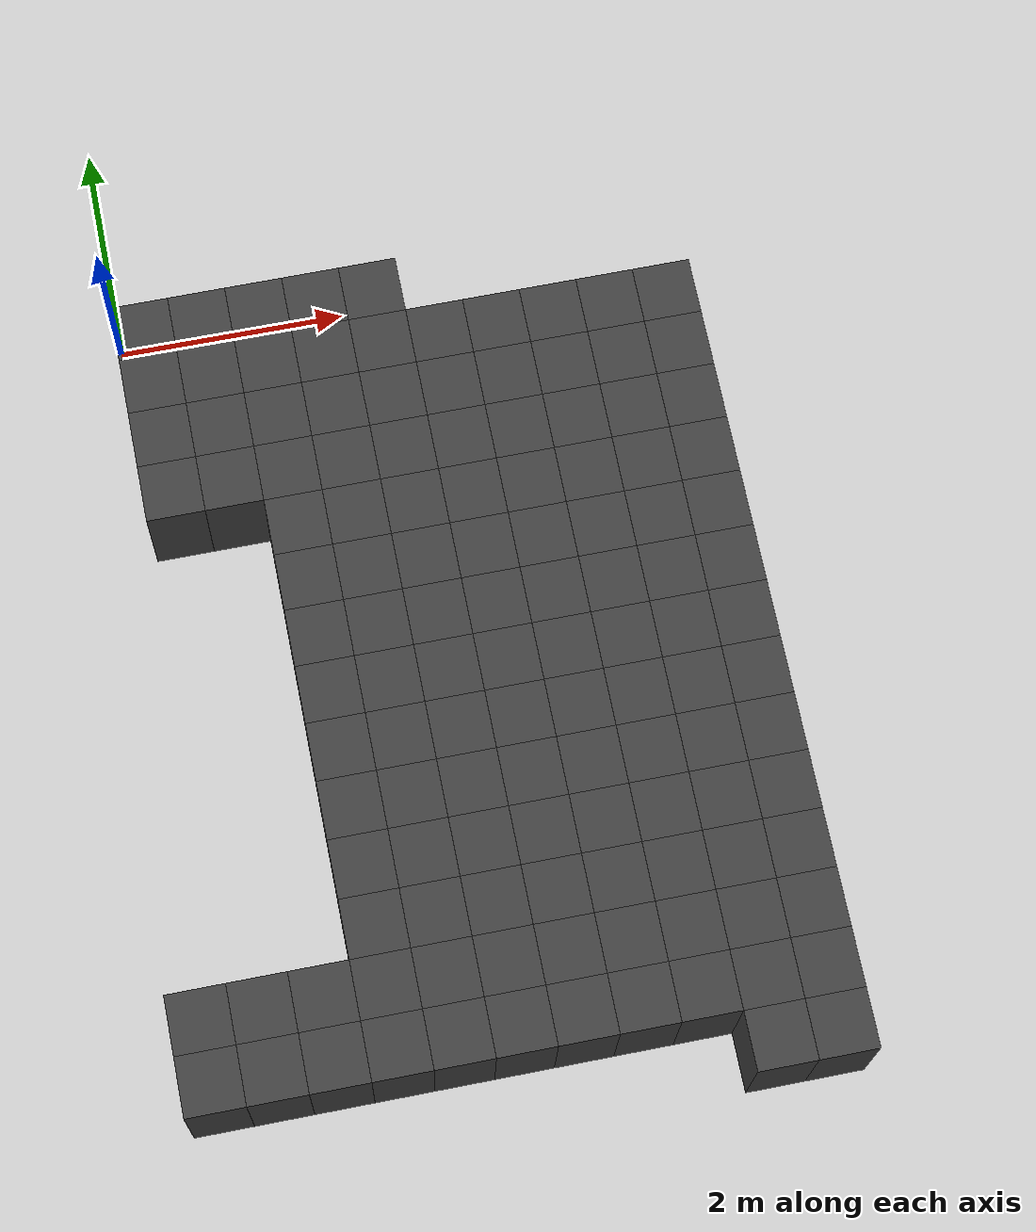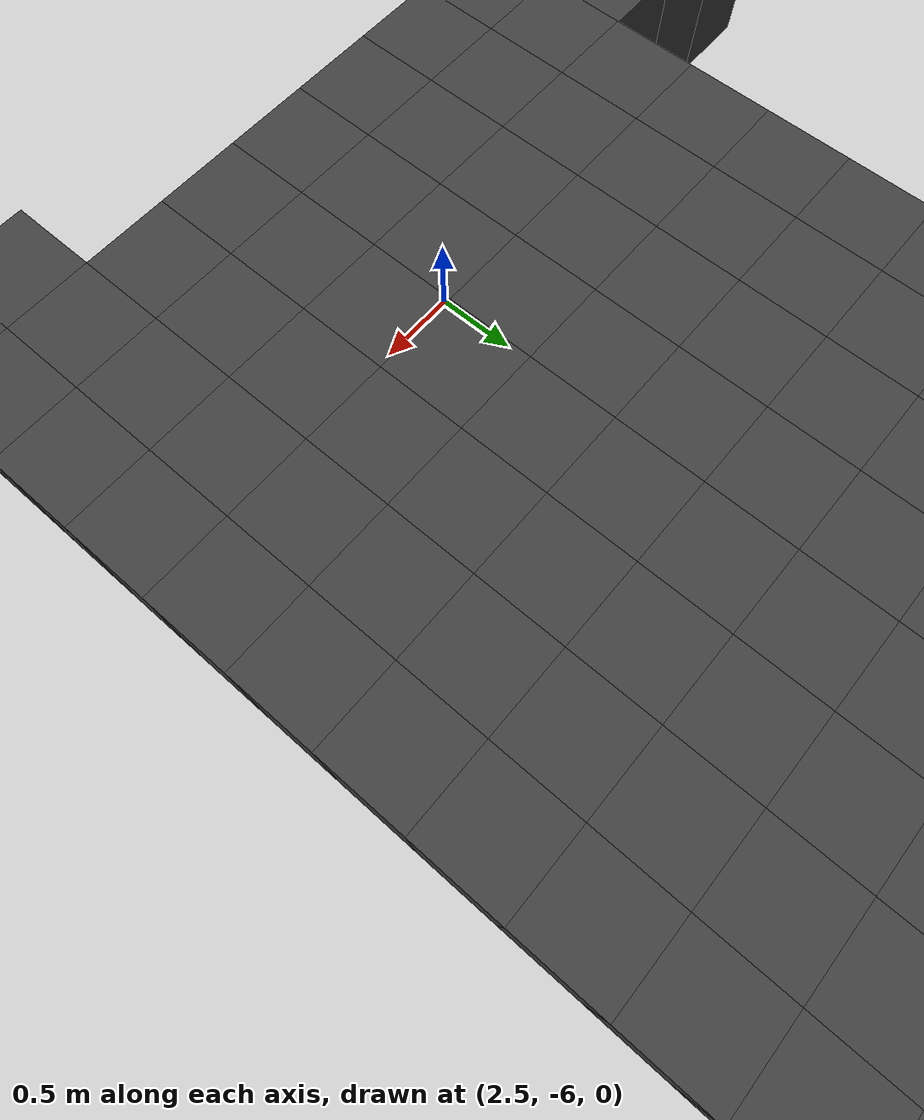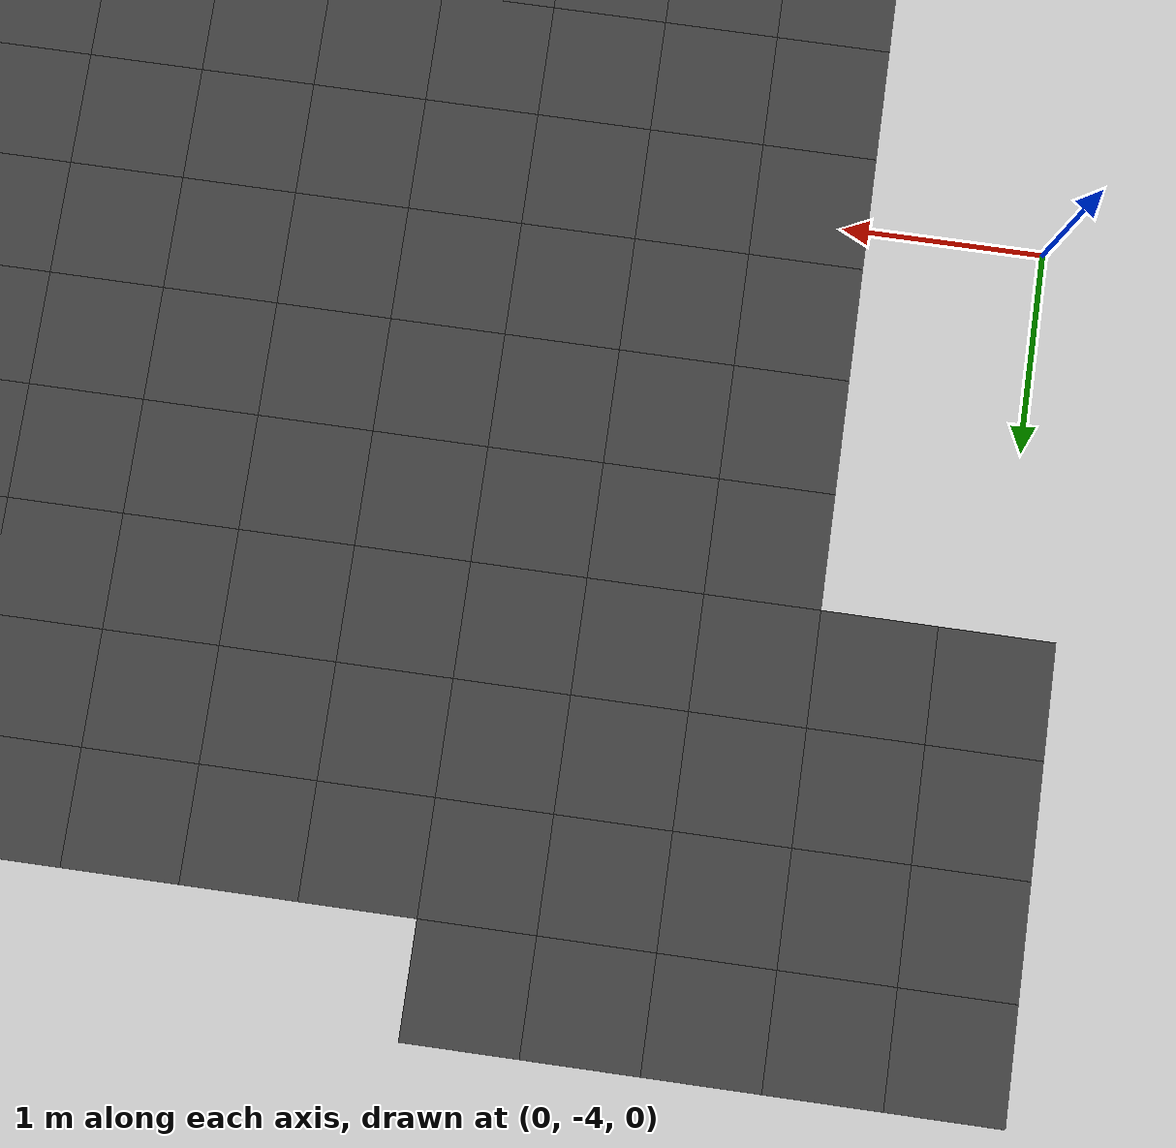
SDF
<sdf version="1.7">
 <world name="map_14074">
  <model name="ground_plane">
   <static>true</static>
   <link name="link">
    <collision name="collision">
     <geometry><plane><normal>0 0 1</normal><size>200 200</size></plane></geometry>
    </collision>
    <visual name="visual">
     <geometry><plane><normal>0 0 1</normal><size>200 200</size></plane></geometry>
     <material><ambient>0.8 0.8 0.8 1</ambient><diffuse>0.8 0.8 0.8 1</diffuse></material>
    </visual>
   </link>
  </model>
  <model name="maze_environment">
   <static>true</static>
   <link name="wall_1005">
    <pose>0.250 -0.250 0.500 0 0 0</pose>
    <collision name="col"><geometry><box><size>0.5 0.5 1.0</size></box></geometry></collision>
    <visual name="vis">
     <geometry><box><size>0.5 0.5 1.0</size></box></geometry>
     <material><ambient>0.15 0.15 0.15 1</ambient><diffuse>0.25 0.25 0.25 1</diffuse></material>
    </visual>
   </link>
   <link name="wall_1006">
    <pose>0.750 -0.250 0.500 0 0 0</pose>
    <collision name="col"><geometry><box><size>0.5 0.5 1.0</size></box></geometry></collision>
    <visual name="vis">
     <geometry><box><size>0.5 0.5 1.0</size></box></geometry>
     <material><ambient>0.15 0.15 0.15 1</ambient><diffuse>0.25 0.25 0.25 1</diffuse></material>
    </visual>
   </link>
   <link name="wall_1007">
    <pose>1.250 -0.250 0.500 0 0 0</pose>
    <collision name="col"><geometry><box><size>0.5 0.5 1.0</size></box></geometry></collision>
    <visual name="vis">
     <geometry><box><size>0.5 0.5 1.0</size></box></geometry>
     <material><ambient>0.15 0.15 0.15 1</ambient><diffuse>0.25 0.25 0.25 1</diffuse></material>
    </visual>
   </link>
   <link name="wall_1008">
    <pose>1.750 -0.250 0.500 0 0 0</pose>
    <collision name="col"><geometry><box><size>0.5 0.5 1.0</size></box></geometry></collision>
    <visual name="vis">
     <geometry><box><size>0.5 0.5 1.0</size></box></geometry>
     <material><ambient>0.15 0.15 0.15 1</ambient><diffuse>0.25 0.25 0.25 1</diffuse></material>
    </visual>
   </link>
   <link name="wall_1009">
    <pose>2.250 -0.250 0.500 0 0 0</pose>
    <collision name="col"><geometry><box><size>0.5 0.5 1.0</size></box></geometry></collision>
    <visual name="vis">
     <geometry><box><size>0.5 0.5 1.0</size></box></geometry>
     <material><ambient>0.15 0.15 0.15 1</ambient><diffuse>0.25 0.25 0.25 1</diffuse></material>
    </visual>
   </link>
   <link name="wall_1043">
    <pose>0.250 -0.750 0.500 0 0 0</pose>
    <collision name="col"><geometry><box><size>0.5 0.5 1.0</size></box></geometry></collision>
    <visual name="vis">
     <geometry><box><size>0.5 0.5 1.0</size></box></geometry>
     <material><ambient>0.15 0.15 0.15 1</ambient><diffuse>0.25 0.25 0.25 1</diffuse></material>
    </visual>
   </link>
   <link name="wall_1044">
    <pose>0.750 -0.750 0.500 0 0 0</pose>
    <collision name="col"><geometry><box><size>0.5 0.5 1.0</size></box></geometry></collision>
    <visual name="vis">
     <geometry><box><size>0.5 0.5 1.0</size></box></geometry>
     <material><ambient>0.15 0.15 0.15 1</ambient><diffuse>0.25 0.25 0.25 1</diffuse></material>
    </visual>
   </link>
   <link name="wall_1045">
    <pose>1.250 -0.750 0.500 0 0 0</pose>
    <collision name="col"><geometry><box><size>0.5 0.5 1.0</size></box></geometry></collision>
    <visual name="vis">
     <geometry><box><size>0.5 0.5 1.0</size></box></geometry>
     <material><ambient>0.15 0.15 0.15 1</ambient><diffuse>0.25 0.25 0.25 1</diffuse></material>
    </visual>
   </link>
   <link name="wall_1046">
    <pose>1.750 -0.750 0.500 0 0 0</pose>
    <collision name="col"><geometry><box><size>0.5 0.5 1.0</size></box></geometry></collision>
    <visual name="vis">
     <geometry><box><size>0.5 0.5 1.0</size></box></geometry>
     <material><ambient>0.15 0.15 0.15 1</ambient><diffuse>0.25 0.25 0.25 1</diffuse></material>
    </visual>
   </link>
   <link name="wall_1047">
    <pose>2.250 -0.750 0.500 0 0 0</pose>
    <collision name="col"><geometry><box><size>0.5 0.5 1.0</size></box></geometry></collision>
    <visual name="vis">
     <geometry><box><size>0.5 0.5 1.0</size></box></geometry>
     <material><ambient>0.15 0.15 0.15 1</ambient><diffuse>0.25 0.25 0.25 1</diffuse></material>
    </visual>
   </link>
   <link name="wall_1048">
    <pose>2.750 -0.750 0.500 0 0 0</pose>
    <collision name="col"><geometry><box><size>0.5 0.5 1.0</size></box></geometry></collision>
    <visual name="vis">
     <geometry><box><size>0.5 0.5 1.0</size></box></geometry>
     <material><ambient>0.15 0.15 0.15 1</ambient><diffuse>0.25 0.25 0.25 1</diffuse></material>
    </visual>
   </link>
   <link name="wall_1049">
    <pose>3.250 -0.750 0.500 0 0 0</pose>
    <collision name="col"><geometry><box><size>0.5 0.5 1.0</size></box></geometry></collision>
    <visual name="vis">
     <geometry><box><size>0.5 0.5 1.0</size></box></geometry>
     <material><ambient>0.15 0.15 0.15 1</ambient><diffuse>0.25 0.25 0.25 1</diffuse></material>
    </visual>
   </link>
   <link name="wall_1050">
    <pose>3.750 -0.750 0.500 0 0 0</pose>
    <collision name="col"><geometry><box><size>0.5 0.5 1.0</size></box></geometry></collision>
    <visual name="vis">
     <geometry><box><size>0.5 0.5 1.0</size></box></geometry>
     <material><ambient>0.15 0.15 0.15 1</ambient><diffuse>0.25 0.25 0.25 1</diffuse></material>
    </visual>
   </link>
   <link name="wall_1051">
    <pose>4.250 -0.750 0.500 0 0 0</pose>
    <collision name="col"><geometry><box><size>0.5 0.5 1.0</size></box></geometry></collision>
    <visual name="vis">
     <geometry><box><size>0.5 0.5 1.0</size></box></geometry>
     <material><ambient>0.15 0.15 0.15 1</ambient><diffuse>0.25 0.25 0.25 1</diffuse></material>
    </visual>
   </link>
   <link name="wall_1052">
    <pose>4.750 -0.750 0.500 0 0 0</pose>
    <collision name="col"><geometry><box><size>0.5 0.5 1.0</size></box></geometry></collision>
    <visual name="vis">
     <geometry><box><size>0.5 0.5 1.0</size></box></geometry>
     <material><ambient>0.15 0.15 0.15 1</ambient><diffuse>0.25 0.25 0.25 1</diffuse></material>
    </visual>
   </link>
   <link name="wall_1082">
    <pose>0.250 -1.250 0.500 0 0 0</pose>
    <collision name="col"><geometry><box><size>0.5 0.5 1.0</size></box></geometry></collision>
    <visual name="vis">
     <geometry><box><size>0.5 0.5 1.0</size></box></geometry>
     <material><ambient>0.15 0.15 0.15 1</ambient><diffuse>0.25 0.25 0.25 1</diffuse></material>
    </visual>
   </link>
   <link name="wall_1083">
    <pose>0.750 -1.250 0.500 0 0 0</pose>
    <collision name="col"><geometry><box><size>0.5 0.5 1.0</size></box></geometry></collision>
    <visual name="vis">
     <geometry><box><size>0.5 0.5 1.0</size></box></geometry>
     <material><ambient>0.15 0.15 0.15 1</ambient><diffuse>0.25 0.25 0.25 1</diffuse></material>
    </visual>
   </link>
   <link name="wall_1084">
    <pose>1.250 -1.250 0.500 0 0 0</pose>
    <collision name="col"><geometry><box><size>0.5 0.5 1.0</size></box></geometry></collision>
    <visual name="vis">
     <geometry><box><size>0.5 0.5 1.0</size></box></geometry>
     <material><ambient>0.15 0.15 0.15 1</ambient><diffuse>0.25 0.25 0.25 1</diffuse></material>
    </visual>
   </link>
   <link name="wall_1085">
    <pose>1.750 -1.250 0.500 0 0 0</pose>
    <collision name="col"><geometry><box><size>0.5 0.5 1.0</size></box></geometry></collision>
    <visual name="vis">
     <geometry><box><size>0.5 0.5 1.0</size></box></geometry>
     <material><ambient>0.15 0.15 0.15 1</ambient><diffuse>0.25 0.25 0.25 1</diffuse></material>
    </visual>
   </link>
   <link name="wall_1086">
    <pose>2.250 -1.250 0.500 0 0 0</pose>
    <collision name="col"><geometry><box><size>0.5 0.5 1.0</size></box></geometry></collision>
    <visual name="vis">
     <geometry><box><size>0.5 0.5 1.0</size></box></geometry>
     <material><ambient>0.15 0.15 0.15 1</ambient><diffuse>0.25 0.25 0.25 1</diffuse></material>
    </visual>
   </link>
   <link name="wall_1087">
    <pose>2.750 -1.250 0.500 0 0 0</pose>
    <collision name="col"><geometry><box><size>0.5 0.5 1.0</size></box></geometry></collision>
    <visual name="vis">
     <geometry><box><size>0.5 0.5 1.0</size></box></geometry>
     <material><ambient>0.15 0.15 0.15 1</ambient><diffuse>0.25 0.25 0.25 1</diffuse></material>
    </visual>
   </link>
   <link name="wall_1088">
    <pose>3.250 -1.250 0.500 0 0 0</pose>
    <collision name="col"><geometry><box><size>0.5 0.5 1.0</size></box></geometry></collision>
    <visual name="vis">
     <geometry><box><size>0.5 0.5 1.0</size></box></geometry>
     <material><ambient>0.15 0.15 0.15 1</ambient><diffuse>0.25 0.25 0.25 1</diffuse></material>
    </visual>
   </link>
   <link name="wall_1089">
    <pose>3.750 -1.250 0.500 0 0 0</pose>
    <collision name="col"><geometry><box><size>0.5 0.5 1.0</size></box></geometry></collision>
    <visual name="vis">
     <geometry><box><size>0.5 0.5 1.0</size></box></geometry>
     <material><ambient>0.15 0.15 0.15 1</ambient><diffuse>0.25 0.25 0.25 1</diffuse></material>
    </visual>
   </link>
   <link name="wall_1090">
    <pose>4.250 -1.250 0.500 0 0 0</pose>
    <collision name="col"><geometry><box><size>0.5 0.5 1.0</size></box></geometry></collision>
    <visual name="vis">
     <geometry><box><size>0.5 0.5 1.0</size></box></geometry>
     <material><ambient>0.15 0.15 0.15 1</ambient><diffuse>0.25 0.25 0.25 1</diffuse></material>
    </visual>
   </link>
   <link name="wall_1091">
    <pose>4.750 -1.250 0.500 0 0 0</pose>
    <collision name="col"><geometry><box><size>0.5 0.5 1.0</size></box></geometry></collision>
    <visual name="vis">
     <geometry><box><size>0.5 0.5 1.0</size></box></geometry>
     <material><ambient>0.15 0.15 0.15 1</ambient><diffuse>0.25 0.25 0.25 1</diffuse></material>
    </visual>
   </link>
   <link name="wall_1122">
    <pose>0.250 -1.750 0.500 0 0 0</pose>
    <collision name="col"><geometry><box><size>0.5 0.5 1.0</size></box></geometry></collision>
    <visual name="vis">
     <geometry><box><size>0.5 0.5 1.0</size></box></geometry>
     <material><ambient>0.15 0.15 0.15 1</ambient><diffuse>0.25 0.25 0.25 1</diffuse></material>
    </visual>
   </link>
   <link name="wall_1123">
    <pose>0.750 -1.750 0.500 0 0 0</pose>
    <collision name="col"><geometry><box><size>0.5 0.5 1.0</size></box></geometry></collision>
    <visual name="vis">
     <geometry><box><size>0.5 0.5 1.0</size></box></geometry>
     <material><ambient>0.15 0.15 0.15 1</ambient><diffuse>0.25 0.25 0.25 1</diffuse></material>
    </visual>
   </link>
   <link name="wall_1124">
    <pose>1.250 -1.750 0.500 0 0 0</pose>
    <collision name="col"><geometry><box><size>0.5 0.5 1.0</size></box></geometry></collision>
    <visual name="vis">
     <geometry><box><size>0.5 0.5 1.0</size></box></geometry>
     <material><ambient>0.15 0.15 0.15 1</ambient><diffuse>0.25 0.25 0.25 1</diffuse></material>
    </visual>
   </link>
   <link name="wall_1125">
    <pose>1.750 -1.750 0.500 0 0 0</pose>
    <collision name="col"><geometry><box><size>0.5 0.5 1.0</size></box></geometry></collision>
    <visual name="vis">
     <geometry><box><size>0.5 0.5 1.0</size></box></geometry>
     <material><ambient>0.15 0.15 0.15 1</ambient><diffuse>0.25 0.25 0.25 1</diffuse></material>
    </visual>
   </link>
   <link name="wall_1126">
    <pose>2.250 -1.750 0.500 0 0 0</pose>
    <collision name="col"><geometry><box><size>0.5 0.5 1.0</size></box></geometry></collision>
    <visual name="vis">
     <geometry><box><size>0.5 0.5 1.0</size></box></geometry>
     <material><ambient>0.15 0.15 0.15 1</ambient><diffuse>0.25 0.25 0.25 1</diffuse></material>
    </visual>
   </link>
   <link name="wall_1127">
    <pose>2.750 -1.750 0.500 0 0 0</pose>
    <collision name="col"><geometry><box><size>0.5 0.5 1.0</size></box></geometry></collision>
    <visual name="vis">
     <geometry><box><size>0.5 0.5 1.0</size></box></geometry>
     <material><ambient>0.15 0.15 0.15 1</ambient><diffuse>0.25 0.25 0.25 1</diffuse></material>
    </visual>
   </link>
   <link name="wall_1128">
    <pose>3.250 -1.750 0.500 0 0 0</pose>
    <collision name="col"><geometry><box><size>0.5 0.5 1.0</size></box></geometry></collision>
    <visual name="vis">
     <geometry><box><size>0.5 0.5 1.0</size></box></geometry>
     <material><ambient>0.15 0.15 0.15 1</ambient><diffuse>0.25 0.25 0.25 1</diffuse></material>
    </visual>
   </link>
   <link name="wall_1129">
    <pose>3.750 -1.750 0.500 0 0 0</pose>
    <collision name="col"><geometry><box><size>0.5 0.5 1.0</size></box></geometry></collision>
    <visual name="vis">
     <geometry><box><size>0.5 0.5 1.0</size></box></geometry>
     <material><ambient>0.15 0.15 0.15 1</ambient><diffuse>0.25 0.25 0.25 1</diffuse></material>
    </visual>
   </link>
   <link name="wall_1130">
    <pose>4.250 -1.750 0.500 0 0 0</pose>
    <collision name="col"><geometry><box><size>0.5 0.5 1.0</size></box></geometry></collision>
    <visual name="vis">
     <geometry><box><size>0.5 0.5 1.0</size></box></geometry>
     <material><ambient>0.15 0.15 0.15 1</ambient><diffuse>0.25 0.25 0.25 1</diffuse></material>
    </visual>
   </link>
   <link name="wall_1131">
    <pose>4.750 -1.750 0.500 0 0 0</pose>
    <collision name="col"><geometry><box><size>0.5 0.5 1.0</size></box></geometry></collision>
    <visual name="vis">
     <geometry><box><size>0.5 0.5 1.0</size></box></geometry>
     <material><ambient>0.15 0.15 0.15 1</ambient><diffuse>0.25 0.25 0.25 1</diffuse></material>
    </visual>
   </link>
   <link name="wall_1164">
    <pose>1.250 -2.250 0.500 0 0 0</pose>
    <collision name="col"><geometry><box><size>0.5 0.5 1.0</size></box></geometry></collision>
    <visual name="vis">
     <geometry><box><size>0.5 0.5 1.0</size></box></geometry>
     <material><ambient>0.15 0.15 0.15 1</ambient><diffuse>0.25 0.25 0.25 1</diffuse></material>
    </visual>
   </link>
   <link name="wall_1165">
    <pose>1.750 -2.250 0.500 0 0 0</pose>
    <collision name="col"><geometry><box><size>0.5 0.5 1.0</size></box></geometry></collision>
    <visual name="vis">
     <geometry><box><size>0.5 0.5 1.0</size></box></geometry>
     <material><ambient>0.15 0.15 0.15 1</ambient><diffuse>0.25 0.25 0.25 1</diffuse></material>
    </visual>
   </link>
   <link name="wall_1166">
    <pose>2.250 -2.250 0.500 0 0 0</pose>
    <collision name="col"><geometry><box><size>0.5 0.5 1.0</size></box></geometry></collision>
    <visual name="vis">
     <geometry><box><size>0.5 0.5 1.0</size></box></geometry>
     <material><ambient>0.15 0.15 0.15 1</ambient><diffuse>0.25 0.25 0.25 1</diffuse></material>
    </visual>
   </link>
   <link name="wall_1167">
    <pose>2.750 -2.250 0.500 0 0 0</pose>
    <collision name="col"><geometry><box><size>0.5 0.5 1.0</size></box></geometry></collision>
    <visual name="vis">
     <geometry><box><size>0.5 0.5 1.0</size></box></geometry>
     <material><ambient>0.15 0.15 0.15 1</ambient><diffuse>0.25 0.25 0.25 1</diffuse></material>
    </visual>
   </link>
   <link name="wall_1168">
    <pose>3.250 -2.250 0.500 0 0 0</pose>
    <collision name="col"><geometry><box><size>0.5 0.5 1.0</size></box></geometry></collision>
    <visual name="vis">
     <geometry><box><size>0.5 0.5 1.0</size></box></geometry>
     <material><ambient>0.15 0.15 0.15 1</ambient><diffuse>0.25 0.25 0.25 1</diffuse></material>
    </visual>
   </link>
   <link name="wall_1169">
    <pose>3.750 -2.250 0.500 0 0 0</pose>
    <collision name="col"><geometry><box><size>0.5 0.5 1.0</size></box></geometry></collision>
    <visual name="vis">
     <geometry><box><size>0.5 0.5 1.0</size></box></geometry>
     <material><ambient>0.15 0.15 0.15 1</ambient><diffuse>0.25 0.25 0.25 1</diffuse></material>
    </visual>
   </link>
   <link name="wall_1170">
    <pose>4.250 -2.250 0.500 0 0 0</pose>
    <collision name="col"><geometry><box><size>0.5 0.5 1.0</size></box></geometry></collision>
    <visual name="vis">
     <geometry><box><size>0.5 0.5 1.0</size></box></geometry>
     <material><ambient>0.15 0.15 0.15 1</ambient><diffuse>0.25 0.25 0.25 1</diffuse></material>
    </visual>
   </link>
   <link name="wall_1171">
    <pose>4.750 -2.250 0.500 0 0 0</pose>
    <collision name="col"><geometry><box><size>0.5 0.5 1.0</size></box></geometry></collision>
    <visual name="vis">
     <geometry><box><size>0.5 0.5 1.0</size></box></geometry>
     <material><ambient>0.15 0.15 0.15 1</ambient><diffuse>0.25 0.25 0.25 1</diffuse></material>
    </visual>
   </link>
   <link name="wall_1200">
    <pose>1.250 -2.750 0.500 0 0 0</pose>
    <collision name="col"><geometry><box><size>0.5 0.5 1.0</size></box></geometry></collision>
    <visual name="vis">
     <geometry><box><size>0.5 0.5 1.0</size></box></geometry>
     <material><ambient>0.15 0.15 0.15 1</ambient><diffuse>0.25 0.25 0.25 1</diffuse></material>
    </visual>
   </link>
   <link name="wall_1201">
    <pose>1.750 -2.750 0.500 0 0 0</pose>
    <collision name="col"><geometry><box><size>0.5 0.5 1.0</size></box></geometry></collision>
    <visual name="vis">
     <geometry><box><size>0.5 0.5 1.0</size></box></geometry>
     <material><ambient>0.15 0.15 0.15 1</ambient><diffuse>0.25 0.25 0.25 1</diffuse></material>
    </visual>
   </link>
   <link name="wall_1202">
    <pose>2.250 -2.750 0.500 0 0 0</pose>
    <collision name="col"><geometry><box><size>0.5 0.5 1.0</size></box></geometry></collision>
    <visual name="vis">
     <geometry><box><size>0.5 0.5 1.0</size></box></geometry>
     <material><ambient>0.15 0.15 0.15 1</ambient><diffuse>0.25 0.25 0.25 1</diffuse></material>
    </visual>
   </link>
   <link name="wall_1203">
    <pose>2.750 -2.750 0.500 0 0 0</pose>
    <collision name="col"><geometry><box><size>0.5 0.5 1.0</size></box></geometry></collision>
    <visual name="vis">
     <geometry><box><size>0.5 0.5 1.0</size></box></geometry>
     <material><ambient>0.15 0.15 0.15 1</ambient><diffuse>0.25 0.25 0.25 1</diffuse></material>
    </visual>
   </link>
   <link name="wall_1204">
    <pose>3.250 -2.750 0.500 0 0 0</pose>
    <collision name="col"><geometry><box><size>0.5 0.5 1.0</size></box></geometry></collision>
    <visual name="vis">
     <geometry><box><size>0.5 0.5 1.0</size></box></geometry>
     <material><ambient>0.15 0.15 0.15 1</ambient><diffuse>0.25 0.25 0.25 1</diffuse></material>
    </visual>
   </link>
   <link name="wall_1205">
    <pose>3.750 -2.750 0.500 0 0 0</pose>
    <collision name="col"><geometry><box><size>0.5 0.5 1.0</size></box></geometry></collision>
    <visual name="vis">
     <geometry><box><size>0.5 0.5 1.0</size></box></geometry>
     <material><ambient>0.15 0.15 0.15 1</ambient><diffuse>0.25 0.25 0.25 1</diffuse></material>
    </visual>
   </link>
   <link name="wall_1206">
    <pose>4.250 -2.750 0.500 0 0 0</pose>
    <collision name="col"><geometry><box><size>0.5 0.5 1.0</size></box></geometry></collision>
    <visual name="vis">
     <geometry><box><size>0.5 0.5 1.0</size></box></geometry>
     <material><ambient>0.15 0.15 0.15 1</ambient><diffuse>0.25 0.25 0.25 1</diffuse></material>
    </visual>
   </link>
   <link name="wall_1207">
    <pose>4.750 -2.750 0.500 0 0 0</pose>
    <collision name="col"><geometry><box><size>0.5 0.5 1.0</size></box></geometry></collision>
    <visual name="vis">
     <geometry><box><size>0.5 0.5 1.0</size></box></geometry>
     <material><ambient>0.15 0.15 0.15 1</ambient><diffuse>0.25 0.25 0.25 1</diffuse></material>
    </visual>
   </link>
   <link name="wall_1230">
    <pose>1.250 -3.250 0.500 0 0 0</pose>
    <collision name="col"><geometry><box><size>0.5 0.5 1.0</size></box></geometry></collision>
    <visual name="vis">
     <geometry><box><size>0.5 0.5 1.0</size></box></geometry>
     <material><ambient>0.15 0.15 0.15 1</ambient><diffuse>0.25 0.25 0.25 1</diffuse></material>
    </visual>
   </link>
   <link name="wall_1231">
    <pose>1.750 -3.250 0.500 0 0 0</pose>
    <collision name="col"><geometry><box><size>0.5 0.5 1.0</size></box></geometry></collision>
    <visual name="vis">
     <geometry><box><size>0.5 0.5 1.0</size></box></geometry>
     <material><ambient>0.15 0.15 0.15 1</ambient><diffuse>0.25 0.25 0.25 1</diffuse></material>
    </visual>
   </link>
   <link name="wall_1232">
    <pose>2.250 -3.250 0.500 0 0 0</pose>
    <collision name="col"><geometry><box><size>0.5 0.5 1.0</size></box></geometry></collision>
    <visual name="vis">
     <geometry><box><size>0.5 0.5 1.0</size></box></geometry>
     <material><ambient>0.15 0.15 0.15 1</ambient><diffuse>0.25 0.25 0.25 1</diffuse></material>
    </visual>
   </link>
   <link name="wall_1233">
    <pose>2.750 -3.250 0.500 0 0 0</pose>
    <collision name="col"><geometry><box><size>0.5 0.5 1.0</size></box></geometry></collision>
    <visual name="vis">
     <geometry><box><size>0.5 0.5 1.0</size></box></geometry>
     <material><ambient>0.15 0.15 0.15 1</ambient><diffuse>0.25 0.25 0.25 1</diffuse></material>
    </visual>
   </link>
   <link name="wall_1234">
    <pose>3.250 -3.250 0.500 0 0 0</pose>
    <collision name="col"><geometry><box><size>0.5 0.5 1.0</size></box></geometry></collision>
    <visual name="vis">
     <geometry><box><size>0.5 0.5 1.0</size></box></geometry>
     <material><ambient>0.15 0.15 0.15 1</ambient><diffuse>0.25 0.25 0.25 1</diffuse></material>
    </visual>
   </link>
   <link name="wall_1235">
    <pose>3.750 -3.250 0.500 0 0 0</pose>
    <collision name="col"><geometry><box><size>0.5 0.5 1.0</size></box></geometry></collision>
    <visual name="vis">
     <geometry><box><size>0.5 0.5 1.0</size></box></geometry>
     <material><ambient>0.15 0.15 0.15 1</ambient><diffuse>0.25 0.25 0.25 1</diffuse></material>
    </visual>
   </link>
   <link name="wall_1236">
    <pose>4.250 -3.250 0.500 0 0 0</pose>
    <collision name="col"><geometry><box><size>0.5 0.5 1.0</size></box></geometry></collision>
    <visual name="vis">
     <geometry><box><size>0.5 0.5 1.0</size></box></geometry>
     <material><ambient>0.15 0.15 0.15 1</ambient><diffuse>0.25 0.25 0.25 1</diffuse></material>
    </visual>
   </link>
   <link name="wall_1237">
    <pose>4.750 -3.250 0.500 0 0 0</pose>
    <collision name="col"><geometry><box><size>0.5 0.5 1.0</size></box></geometry></collision>
    <visual name="vis">
     <geometry><box><size>0.5 0.5 1.0</size></box></geometry>
     <material><ambient>0.15 0.15 0.15 1</ambient><diffuse>0.25 0.25 0.25 1</diffuse></material>
    </visual>
   </link>
   <link name="wall_1260">
    <pose>1.250 -3.750 0.500 0 0 0</pose>
    <collision name="col"><geometry><box><size>0.5 0.5 1.0</size></box></geometry></collision>
    <visual name="vis">
     <geometry><box><size>0.5 0.5 1.0</size></box></geometry>
     <material><ambient>0.15 0.15 0.15 1</ambient><diffuse>0.25 0.25 0.25 1</diffuse></material>
    </visual>
   </link>
   <link name="wall_1261">
    <pose>1.750 -3.750 0.500 0 0 0</pose>
    <collision name="col"><geometry><box><size>0.5 0.5 1.0</size></box></geometry></collision>
    <visual name="vis">
     <geometry><box><size>0.5 0.5 1.0</size></box></geometry>
     <material><ambient>0.15 0.15 0.15 1</ambient><diffuse>0.25 0.25 0.25 1</diffuse></material>
    </visual>
   </link>
   <link name="wall_1262">
    <pose>2.250 -3.750 0.500 0 0 0</pose>
    <collision name="col"><geometry><box><size>0.5 0.5 1.0</size></box></geometry></collision>
    <visual name="vis">
     <geometry><box><size>0.5 0.5 1.0</size></box></geometry>
     <material><ambient>0.15 0.15 0.15 1</ambient><diffuse>0.25 0.25 0.25 1</diffuse></material>
    </visual>
   </link>
   <link name="wall_1263">
    <pose>2.750 -3.750 0.500 0 0 0</pose>
    <collision name="col"><geometry><box><size>0.5 0.5 1.0</size></box></geometry></collision>
    <visual name="vis">
     <geometry><box><size>0.5 0.5 1.0</size></box></geometry>
     <material><ambient>0.15 0.15 0.15 1</ambient><diffuse>0.25 0.25 0.25 1</diffuse></material>
    </visual>
   </link>
   <link name="wall_1264">
    <pose>3.250 -3.750 0.500 0 0 0</pose>
    <collision name="col"><geometry><box><size>0.5 0.5 1.0</size></box></geometry></collision>
    <visual name="vis">
     <geometry><box><size>0.5 0.5 1.0</size></box></geometry>
     <material><ambient>0.15 0.15 0.15 1</ambient><diffuse>0.25 0.25 0.25 1</diffuse></material>
    </visual>
   </link>
   <link name="wall_1265">
    <pose>3.750 -3.750 0.500 0 0 0</pose>
    <collision name="col"><geometry><box><size>0.5 0.5 1.0</size></box></geometry></collision>
    <visual name="vis">
     <geometry><box><size>0.5 0.5 1.0</size></box></geometry>
     <material><ambient>0.15 0.15 0.15 1</ambient><diffuse>0.25 0.25 0.25 1</diffuse></material>
    </visual>
   </link>
   <link name="wall_1266">
    <pose>4.250 -3.750 0.500 0 0 0</pose>
    <collision name="col"><geometry><box><size>0.5 0.5 1.0</size></box></geometry></collision>
    <visual name="vis">
     <geometry><box><size>0.5 0.5 1.0</size></box></geometry>
     <material><ambient>0.15 0.15 0.15 1</ambient><diffuse>0.25 0.25 0.25 1</diffuse></material>
    </visual>
   </link>
   <link name="wall_1267">
    <pose>4.750 -3.750 0.500 0 0 0</pose>
    <collision name="col"><geometry><box><size>0.5 0.5 1.0</size></box></geometry></collision>
    <visual name="vis">
     <geometry><box><size>0.5 0.5 1.0</size></box></geometry>
     <material><ambient>0.15 0.15 0.15 1</ambient><diffuse>0.25 0.25 0.25 1</diffuse></material>
    </visual>
   </link>
   <link name="wall_1289">
    <pose>1.250 -4.250 0.500 0 0 0</pose>
    <collision name="col"><geometry><box><size>0.5 0.5 1.0</size></box></geometry></collision>
    <visual name="vis">
     <geometry><box><size>0.5 0.5 1.0</size></box></geometry>
     <material><ambient>0.15 0.15 0.15 1</ambient><diffuse>0.25 0.25 0.25 1</diffuse></material>
    </visual>
   </link>
   <link name="wall_1290">
    <pose>1.750 -4.250 0.500 0 0 0</pose>
    <collision name="col"><geometry><box><size>0.5 0.5 1.0</size></box></geometry></collision>
    <visual name="vis">
     <geometry><box><size>0.5 0.5 1.0</size></box></geometry>
     <material><ambient>0.15 0.15 0.15 1</ambient><diffuse>0.25 0.25 0.25 1</diffuse></material>
    </visual>
   </link>
   <link name="wall_1291">
    <pose>2.250 -4.250 0.500 0 0 0</pose>
    <collision name="col"><geometry><box><size>0.5 0.5 1.0</size></box></geometry></collision>
    <visual name="vis">
     <geometry><box><size>0.5 0.5 1.0</size></box></geometry>
     <material><ambient>0.15 0.15 0.15 1</ambient><diffuse>0.25 0.25 0.25 1</diffuse></material>
    </visual>
   </link>
   <link name="wall_1292">
    <pose>2.750 -4.250 0.500 0 0 0</pose>
    <collision name="col"><geometry><box><size>0.5 0.5 1.0</size></box></geometry></collision>
    <visual name="vis">
     <geometry><box><size>0.5 0.5 1.0</size></box></geometry>
     <material><ambient>0.15 0.15 0.15 1</ambient><diffuse>0.25 0.25 0.25 1</diffuse></material>
    </visual>
   </link>
   <link name="wall_1293">
    <pose>3.250 -4.250 0.500 0 0 0</pose>
    <collision name="col"><geometry><box><size>0.5 0.5 1.0</size></box></geometry></collision>
    <visual name="vis">
     <geometry><box><size>0.5 0.5 1.0</size></box></geometry>
     <material><ambient>0.15 0.15 0.15 1</ambient><diffuse>0.25 0.25 0.25 1</diffuse></material>
    </visual>
   </link>
   <link name="wall_1294">
    <pose>3.750 -4.250 0.500 0 0 0</pose>
    <collision name="col"><geometry><box><size>0.5 0.5 1.0</size></box></geometry></collision>
    <visual name="vis">
     <geometry><box><size>0.5 0.5 1.0</size></box></geometry>
     <material><ambient>0.15 0.15 0.15 1</ambient><diffuse>0.25 0.25 0.25 1</diffuse></material>
    </visual>
   </link>
   <link name="wall_1295">
    <pose>4.250 -4.250 0.500 0 0 0</pose>
    <collision name="col"><geometry><box><size>0.5 0.5 1.0</size></box></geometry></collision>
    <visual name="vis">
     <geometry><box><size>0.5 0.5 1.0</size></box></geometry>
     <material><ambient>0.15 0.15 0.15 1</ambient><diffuse>0.25 0.25 0.25 1</diffuse></material>
    </visual>
   </link>
   <link name="wall_1296">
    <pose>4.750 -4.250 0.500 0 0 0</pose>
    <collision name="col"><geometry><box><size>0.5 0.5 1.0</size></box></geometry></collision>
    <visual name="vis">
     <geometry><box><size>0.5 0.5 1.0</size></box></geometry>
     <material><ambient>0.15 0.15 0.15 1</ambient><diffuse>0.25 0.25 0.25 1</diffuse></material>
    </visual>
   </link>
   <link name="wall_1317">
    <pose>1.250 -4.750 0.500 0 0 0</pose>
    <collision name="col"><geometry><box><size>0.5 0.5 1.0</size></box></geometry></collision>
    <visual name="vis">
     <geometry><box><size>0.5 0.5 1.0</size></box></geometry>
     <material><ambient>0.15 0.15 0.15 1</ambient><diffuse>0.25 0.25 0.25 1</diffuse></material>
    </visual>
   </link>
   <link name="wall_1318">
    <pose>1.750 -4.750 0.500 0 0 0</pose>
    <collision name="col"><geometry><box><size>0.5 0.5 1.0</size></box></geometry></collision>
    <visual name="vis">
     <geometry><box><size>0.5 0.5 1.0</size></box></geometry>
     <material><ambient>0.15 0.15 0.15 1</ambient><diffuse>0.25 0.25 0.25 1</diffuse></material>
    </visual>
   </link>
   <link name="wall_1319">
    <pose>2.250 -4.750 0.500 0 0 0</pose>
    <collision name="col"><geometry><box><size>0.5 0.5 1.0</size></box></geometry></collision>
    <visual name="vis">
     <geometry><box><size>0.5 0.5 1.0</size></box></geometry>
     <material><ambient>0.15 0.15 0.15 1</ambient><diffuse>0.25 0.25 0.25 1</diffuse></material>
    </visual>
   </link>
   <link name="wall_1320">
    <pose>2.750 -4.750 0.500 0 0 0</pose>
    <collision name="col"><geometry><box><size>0.5 0.5 1.0</size></box></geometry></collision>
    <visual name="vis">
     <geometry><box><size>0.5 0.5 1.0</size></box></geometry>
     <material><ambient>0.15 0.15 0.15 1</ambient><diffuse>0.25 0.25 0.25 1</diffuse></material>
    </visual>
   </link>
   <link name="wall_1321">
    <pose>3.250 -4.750 0.500 0 0 0</pose>
    <collision name="col"><geometry><box><size>0.5 0.5 1.0</size></box></geometry></collision>
    <visual name="vis">
     <geometry><box><size>0.5 0.5 1.0</size></box></geometry>
     <material><ambient>0.15 0.15 0.15 1</ambient><diffuse>0.25 0.25 0.25 1</diffuse></material>
    </visual>
   </link>
   <link name="wall_1322">
    <pose>3.750 -4.750 0.500 0 0 0</pose>
    <collision name="col"><geometry><box><size>0.5 0.5 1.0</size></box></geometry></collision>
    <visual name="vis">
     <geometry><box><size>0.5 0.5 1.0</size></box></geometry>
     <material><ambient>0.15 0.15 0.15 1</ambient><diffuse>0.25 0.25 0.25 1</diffuse></material>
    </visual>
   </link>
   <link name="wall_1323">
    <pose>4.250 -4.750 0.500 0 0 0</pose>
    <collision name="col"><geometry><box><size>0.5 0.5 1.0</size></box></geometry></collision>
    <visual name="vis">
     <geometry><box><size>0.5 0.5 1.0</size></box></geometry>
     <material><ambient>0.15 0.15 0.15 1</ambient><diffuse>0.25 0.25 0.25 1</diffuse></material>
    </visual>
   </link>
   <link name="wall_1324">
    <pose>4.750 -4.750 0.500 0 0 0</pose>
    <collision name="col"><geometry><box><size>0.5 0.5 1.0</size></box></geometry></collision>
    <visual name="vis">
     <geometry><box><size>0.5 0.5 1.0</size></box></geometry>
     <material><ambient>0.15 0.15 0.15 1</ambient><diffuse>0.25 0.25 0.25 1</diffuse></material>
    </visual>
   </link>
   <link name="wall_1338">
    <pose>1.250 -5.250 0.500 0 0 0</pose>
    <collision name="col"><geometry><box><size>0.5 0.5 1.0</size></box></geometry></collision>
    <visual name="vis">
     <geometry><box><size>0.5 0.5 1.0</size></box></geometry>
     <material><ambient>0.15 0.15 0.15 1</ambient><diffuse>0.25 0.25 0.25 1</diffuse></material>
    </visual>
   </link>
   <link name="wall_1339">
    <pose>1.750 -5.250 0.500 0 0 0</pose>
    <collision name="col"><geometry><box><size>0.5 0.5 1.0</size></box></geometry></collision>
    <visual name="vis">
     <geometry><box><size>0.5 0.5 1.0</size></box></geometry>
     <material><ambient>0.15 0.15 0.15 1</ambient><diffuse>0.25 0.25 0.25 1</diffuse></material>
    </visual>
   </link>
   <link name="wall_1340">
    <pose>2.250 -5.250 0.500 0 0 0</pose>
    <collision name="col"><geometry><box><size>0.5 0.5 1.0</size></box></geometry></collision>
    <visual name="vis">
     <geometry><box><size>0.5 0.5 1.0</size></box></geometry>
     <material><ambient>0.15 0.15 0.15 1</ambient><diffuse>0.25 0.25 0.25 1</diffuse></material>
    </visual>
   </link>
   <link name="wall_1341">
    <pose>2.750 -5.250 0.500 0 0 0</pose>
    <collision name="col"><geometry><box><size>0.5 0.5 1.0</size></box></geometry></collision>
    <visual name="vis">
     <geometry><box><size>0.5 0.5 1.0</size></box></geometry>
     <material><ambient>0.15 0.15 0.15 1</ambient><diffuse>0.25 0.25 0.25 1</diffuse></material>
    </visual>
   </link>
   <link name="wall_1342">
    <pose>3.250 -5.250 0.500 0 0 0</pose>
    <collision name="col"><geometry><box><size>0.5 0.5 1.0</size></box></geometry></collision>
    <visual name="vis">
     <geometry><box><size>0.5 0.5 1.0</size></box></geometry>
     <material><ambient>0.15 0.15 0.15 1</ambient><diffuse>0.25 0.25 0.25 1</diffuse></material>
    </visual>
   </link>
   <link name="wall_1343">
    <pose>3.750 -5.250 0.500 0 0 0</pose>
    <collision name="col"><geometry><box><size>0.5 0.5 1.0</size></box></geometry></collision>
    <visual name="vis">
     <geometry><box><size>0.5 0.5 1.0</size></box></geometry>
     <material><ambient>0.15 0.15 0.15 1</ambient><diffuse>0.25 0.25 0.25 1</diffuse></material>
    </visual>
   </link>
   <link name="wall_1344">
    <pose>4.250 -5.250 0.500 0 0 0</pose>
    <collision name="col"><geometry><box><size>0.5 0.5 1.0</size></box></geometry></collision>
    <visual name="vis">
     <geometry><box><size>0.5 0.5 1.0</size></box></geometry>
     <material><ambient>0.15 0.15 0.15 1</ambient><diffuse>0.25 0.25 0.25 1</diffuse></material>
    </visual>
   </link>
   <link name="wall_1345">
    <pose>4.750 -5.250 0.500 0 0 0</pose>
    <collision name="col"><geometry><box><size>0.5 0.5 1.0</size></box></geometry></collision>
    <visual name="vis">
     <geometry><box><size>0.5 0.5 1.0</size></box></geometry>
     <material><ambient>0.15 0.15 0.15 1</ambient><diffuse>0.25 0.25 0.25 1</diffuse></material>
    </visual>
   </link>
   <link name="wall_1359">
    <pose>1.250 -5.750 0.500 0 0 0</pose>
    <collision name="col"><geometry><box><size>0.5 0.5 1.0</size></box></geometry></collision>
    <visual name="vis">
     <geometry><box><size>0.5 0.5 1.0</size></box></geometry>
     <material><ambient>0.15 0.15 0.15 1</ambient><diffuse>0.25 0.25 0.25 1</diffuse></material>
    </visual>
   </link>
   <link name="wall_1360">
    <pose>1.750 -5.750 0.500 0 0 0</pose>
    <collision name="col"><geometry><box><size>0.5 0.5 1.0</size></box></geometry></collision>
    <visual name="vis">
     <geometry><box><size>0.5 0.5 1.0</size></box></geometry>
     <material><ambient>0.15 0.15 0.15 1</ambient><diffuse>0.25 0.25 0.25 1</diffuse></material>
    </visual>
   </link>
   <link name="wall_1361">
    <pose>2.250 -5.750 0.500 0 0 0</pose>
    <collision name="col"><geometry><box><size>0.5 0.5 1.0</size></box></geometry></collision>
    <visual name="vis">
     <geometry><box><size>0.5 0.5 1.0</size></box></geometry>
     <material><ambient>0.15 0.15 0.15 1</ambient><diffuse>0.25 0.25 0.25 1</diffuse></material>
    </visual>
   </link>
   <link name="wall_1362">
    <pose>2.750 -5.750 0.500 0 0 0</pose>
    <collision name="col"><geometry><box><size>0.5 0.5 1.0</size></box></geometry></collision>
    <visual name="vis">
     <geometry><box><size>0.5 0.5 1.0</size></box></geometry>
     <material><ambient>0.15 0.15 0.15 1</ambient><diffuse>0.25 0.25 0.25 1</diffuse></material>
    </visual>
   </link>
   <link name="wall_1363">
    <pose>3.250 -5.750 0.500 0 0 0</pose>
    <collision name="col"><geometry><box><size>0.5 0.5 1.0</size></box></geometry></collision>
    <visual name="vis">
     <geometry><box><size>0.5 0.5 1.0</size></box></geometry>
     <material><ambient>0.15 0.15 0.15 1</ambient><diffuse>0.25 0.25 0.25 1</diffuse></material>
    </visual>
   </link>
   <link name="wall_1364">
    <pose>3.750 -5.750 0.500 0 0 0</pose>
    <collision name="col"><geometry><box><size>0.5 0.5 1.0</size></box></geometry></collision>
    <visual name="vis">
     <geometry><box><size>0.5 0.5 1.0</size></box></geometry>
     <material><ambient>0.15 0.15 0.15 1</ambient><diffuse>0.25 0.25 0.25 1</diffuse></material>
    </visual>
   </link>
   <link name="wall_1365">
    <pose>4.250 -5.750 0.500 0 0 0</pose>
    <collision name="col"><geometry><box><size>0.5 0.5 1.0</size></box></geometry></collision>
    <visual name="vis">
     <geometry><box><size>0.5 0.5 1.0</size></box></geometry>
     <material><ambient>0.15 0.15 0.15 1</ambient><diffuse>0.25 0.25 0.25 1</diffuse></material>
    </visual>
   </link>
   <link name="wall_1366">
    <pose>4.750 -5.750 0.500 0 0 0</pose>
    <collision name="col"><geometry><box><size>0.5 0.5 1.0</size></box></geometry></collision>
    <visual name="vis">
     <geometry><box><size>0.5 0.5 1.0</size></box></geometry>
     <material><ambient>0.15 0.15 0.15 1</ambient><diffuse>0.25 0.25 0.25 1</diffuse></material>
    </visual>
   </link>
   <link name="wall_1383">
    <pose>-0.250 -6.250 0.500 0 0 0</pose>
    <collision name="col"><geometry><box><size>0.5 0.5 1.0</size></box></geometry></collision>
    <visual name="vis">
     <geometry><box><size>0.5 0.5 1.0</size></box></geometry>
     <material><ambient>0.15 0.15 0.15 1</ambient><diffuse>0.25 0.25 0.25 1</diffuse></material>
    </visual>
   </link>
   <link name="wall_1384">
    <pose>0.250 -6.250 0.500 0 0 0</pose>
    <collision name="col"><geometry><box><size>0.5 0.5 1.0</size></box></geometry></collision>
    <visual name="vis">
     <geometry><box><size>0.5 0.5 1.0</size></box></geometry>
     <material><ambient>0.15 0.15 0.15 1</ambient><diffuse>0.25 0.25 0.25 1</diffuse></material>
    </visual>
   </link>
   <link name="wall_1385">
    <pose>0.750 -6.250 0.500 0 0 0</pose>
    <collision name="col"><geometry><box><size>0.5 0.5 1.0</size></box></geometry></collision>
    <visual name="vis">
     <geometry><box><size>0.5 0.5 1.0</size></box></geometry>
     <material><ambient>0.15 0.15 0.15 1</ambient><diffuse>0.25 0.25 0.25 1</diffuse></material>
    </visual>
   </link>
   <link name="wall_1386">
    <pose>1.250 -6.250 0.500 0 0 0</pose>
    <collision name="col"><geometry><box><size>0.5 0.5 1.0</size></box></geometry></collision>
    <visual name="vis">
     <geometry><box><size>0.5 0.5 1.0</size></box></geometry>
     <material><ambient>0.15 0.15 0.15 1</ambient><diffuse>0.25 0.25 0.25 1</diffuse></material>
    </visual>
   </link>
   <link name="wall_1387">
    <pose>1.750 -6.250 0.500 0 0 0</pose>
    <collision name="col"><geometry><box><size>0.5 0.5 1.0</size></box></geometry></collision>
    <visual name="vis">
     <geometry><box><size>0.5 0.5 1.0</size></box></geometry>
     <material><ambient>0.15 0.15 0.15 1</ambient><diffuse>0.25 0.25 0.25 1</diffuse></material>
    </visual>
   </link>
   <link name="wall_1388">
    <pose>2.250 -6.250 0.500 0 0 0</pose>
    <collision name="col"><geometry><box><size>0.5 0.5 1.0</size></box></geometry></collision>
    <visual name="vis">
     <geometry><box><size>0.5 0.5 1.0</size></box></geometry>
     <material><ambient>0.15 0.15 0.15 1</ambient><diffuse>0.25 0.25 0.25 1</diffuse></material>
    </visual>
   </link>
   <link name="wall_1389">
    <pose>2.750 -6.250 0.500 0 0 0</pose>
    <collision name="col"><geometry><box><size>0.5 0.5 1.0</size></box></geometry></collision>
    <visual name="vis">
     <geometry><box><size>0.5 0.5 1.0</size></box></geometry>
     <material><ambient>0.15 0.15 0.15 1</ambient><diffuse>0.25 0.25 0.25 1</diffuse></material>
    </visual>
   </link>
   <link name="wall_1390">
    <pose>3.250 -6.250 0.500 0 0 0</pose>
    <collision name="col"><geometry><box><size>0.5 0.5 1.0</size></box></geometry></collision>
    <visual name="vis">
     <geometry><box><size>0.5 0.5 1.0</size></box></geometry>
     <material><ambient>0.15 0.15 0.15 1</ambient><diffuse>0.25 0.25 0.25 1</diffuse></material>
    </visual>
   </link>
   <link name="wall_1391">
    <pose>3.750 -6.250 0.500 0 0 0</pose>
    <collision name="col"><geometry><box><size>0.5 0.5 1.0</size></box></geometry></collision>
    <visual name="vis">
     <geometry><box><size>0.5 0.5 1.0</size></box></geometry>
     <material><ambient>0.15 0.15 0.15 1</ambient><diffuse>0.25 0.25 0.25 1</diffuse></material>
    </visual>
   </link>
   <link name="wall_1392">
    <pose>4.250 -6.250 0.500 0 0 0</pose>
    <collision name="col"><geometry><box><size>0.5 0.5 1.0</size></box></geometry></collision>
    <visual name="vis">
     <geometry><box><size>0.5 0.5 1.0</size></box></geometry>
     <material><ambient>0.15 0.15 0.15 1</ambient><diffuse>0.25 0.25 0.25 1</diffuse></material>
    </visual>
   </link>
   <link name="wall_1393">
    <pose>4.750 -6.250 0.500 0 0 0</pose>
    <collision name="col"><geometry><box><size>0.5 0.5 1.0</size></box></geometry></collision>
    <visual name="vis">
     <geometry><box><size>0.5 0.5 1.0</size></box></geometry>
     <material><ambient>0.15 0.15 0.15 1</ambient><diffuse>0.25 0.25 0.25 1</diffuse></material>
    </visual>
   </link>
   <link name="wall_1406">
    <pose>-0.250 -6.750 0.500 0 0 0</pose>
    <collision name="col"><geometry><box><size>0.5 0.5 1.0</size></box></geometry></collision>
    <visual name="vis">
     <geometry><box><size>0.5 0.5 1.0</size></box></geometry>
     <material><ambient>0.15 0.15 0.15 1</ambient><diffuse>0.25 0.25 0.25 1</diffuse></material>
    </visual>
   </link>
   <link name="wall_1407">
    <pose>0.250 -6.750 0.500 0 0 0</pose>
    <collision name="col"><geometry><box><size>0.5 0.5 1.0</size></box></geometry></collision>
    <visual name="vis">
     <geometry><box><size>0.5 0.5 1.0</size></box></geometry>
     <material><ambient>0.15 0.15 0.15 1</ambient><diffuse>0.25 0.25 0.25 1</diffuse></material>
    </visual>
   </link>
   <link name="wall_1408">
    <pose>0.750 -6.750 0.500 0 0 0</pose>
    <collision name="col"><geometry><box><size>0.5 0.5 1.0</size></box></geometry></collision>
    <visual name="vis">
     <geometry><box><size>0.5 0.5 1.0</size></box></geometry>
     <material><ambient>0.15 0.15 0.15 1</ambient><diffuse>0.25 0.25 0.25 1</diffuse></material>
    </visual>
   </link>
   <link name="wall_1409">
    <pose>1.250 -6.750 0.500 0 0 0</pose>
    <collision name="col"><geometry><box><size>0.5 0.5 1.0</size></box></geometry></collision>
    <visual name="vis">
     <geometry><box><size>0.5 0.5 1.0</size></box></geometry>
     <material><ambient>0.15 0.15 0.15 1</ambient><diffuse>0.25 0.25 0.25 1</diffuse></material>
    </visual>
   </link>
   <link name="wall_1410">
    <pose>1.750 -6.750 0.500 0 0 0</pose>
    <collision name="col"><geometry><box><size>0.5 0.5 1.0</size></box></geometry></collision>
    <visual name="vis">
     <geometry><box><size>0.5 0.5 1.0</size></box></geometry>
     <material><ambient>0.15 0.15 0.15 1</ambient><diffuse>0.25 0.25 0.25 1</diffuse></material>
    </visual>
   </link>
   <link name="wall_1411">
    <pose>2.250 -6.750 0.500 0 0 0</pose>
    <collision name="col"><geometry><box><size>0.5 0.5 1.0</size></box></geometry></collision>
    <visual name="vis">
     <geometry><box><size>0.5 0.5 1.0</size></box></geometry>
     <material><ambient>0.15 0.15 0.15 1</ambient><diffuse>0.25 0.25 0.25 1</diffuse></material>
    </visual>
   </link>
   <link name="wall_1412">
    <pose>2.750 -6.750 0.500 0 0 0</pose>
    <collision name="col"><geometry><box><size>0.5 0.5 1.0</size></box></geometry></collision>
    <visual name="vis">
     <geometry><box><size>0.5 0.5 1.0</size></box></geometry>
     <material><ambient>0.15 0.15 0.15 1</ambient><diffuse>0.25 0.25 0.25 1</diffuse></material>
    </visual>
   </link>
   <link name="wall_1413">
    <pose>3.250 -6.750 0.500 0 0 0</pose>
    <collision name="col"><geometry><box><size>0.5 0.5 1.0</size></box></geometry></collision>
    <visual name="vis">
     <geometry><box><size>0.5 0.5 1.0</size></box></geometry>
     <material><ambient>0.15 0.15 0.15 1</ambient><diffuse>0.25 0.25 0.25 1</diffuse></material>
    </visual>
   </link>
   <link name="wall_1414">
    <pose>3.750 -6.750 0.500 0 0 0</pose>
    <collision name="col"><geometry><box><size>0.5 0.5 1.0</size></box></geometry></collision>
    <visual name="vis">
     <geometry><box><size>0.5 0.5 1.0</size></box></geometry>
     <material><ambient>0.15 0.15 0.15 1</ambient><diffuse>0.25 0.25 0.25 1</diffuse></material>
    </visual>
   </link>
   <link name="wall_1415">
    <pose>4.250 -6.750 0.500 0 0 0</pose>
    <collision name="col"><geometry><box><size>0.5 0.5 1.0</size></box></geometry></collision>
    <visual name="vis">
     <geometry><box><size>0.5 0.5 1.0</size></box></geometry>
     <material><ambient>0.15 0.15 0.15 1</ambient><diffuse>0.25 0.25 0.25 1</diffuse></material>
    </visual>
   </link>
   <link name="wall_1416">
    <pose>4.750 -6.750 0.500 0 0 0</pose>
    <collision name="col"><geometry><box><size>0.5 0.5 1.0</size></box></geometry></collision>
    <visual name="vis">
     <geometry><box><size>0.5 0.5 1.0</size></box></geometry>
     <material><ambient>0.15 0.15 0.15 1</ambient><diffuse>0.25 0.25 0.25 1</diffuse></material>
    </visual>
   </link>
   <link name="wall_1440">
    <pose>4.250 -7.250 0.500 0 0 0</pose>
    <collision name="col"><geometry><box><size>0.5 0.5 1.0</size></box></geometry></collision>
    <visual name="vis">
     <geometry><box><size>0.5 0.5 1.0</size></box></geometry>
     <material><ambient>0.15 0.15 0.15 1</ambient><diffuse>0.25 0.25 0.25 1</diffuse></material>
    </visual>
   </link>
   <link name="wall_1441">
    <pose>4.750 -7.250 0.500 0 0 0</pose>
    <collision name="col"><geometry><box><size>0.5 0.5 1.0</size></box></geometry></collision>
    <visual name="vis">
     <geometry><box><size>0.5 0.5 1.0</size></box></geometry>
     <material><ambient>0.15 0.15 0.15 1</ambient><diffuse>0.25 0.25 0.25 1</diffuse></material>
    </visual>
   </link>
  </model>
 </world>
</sdf>
